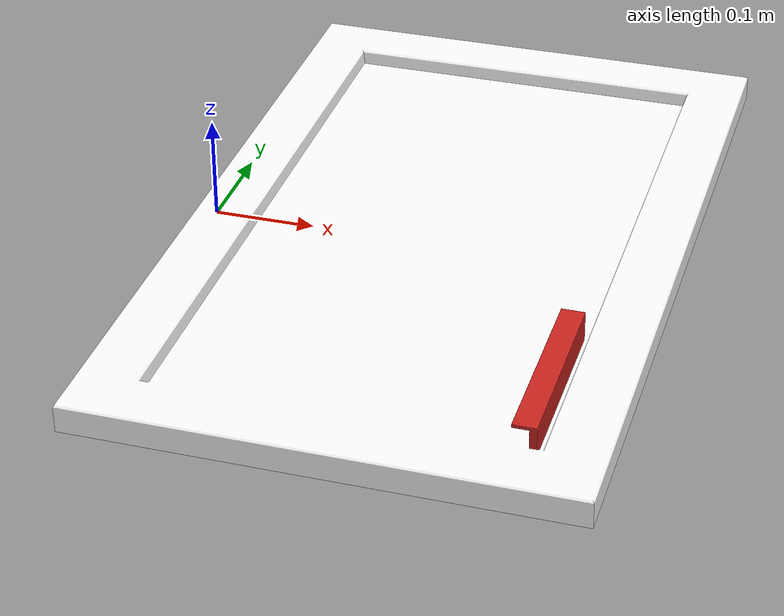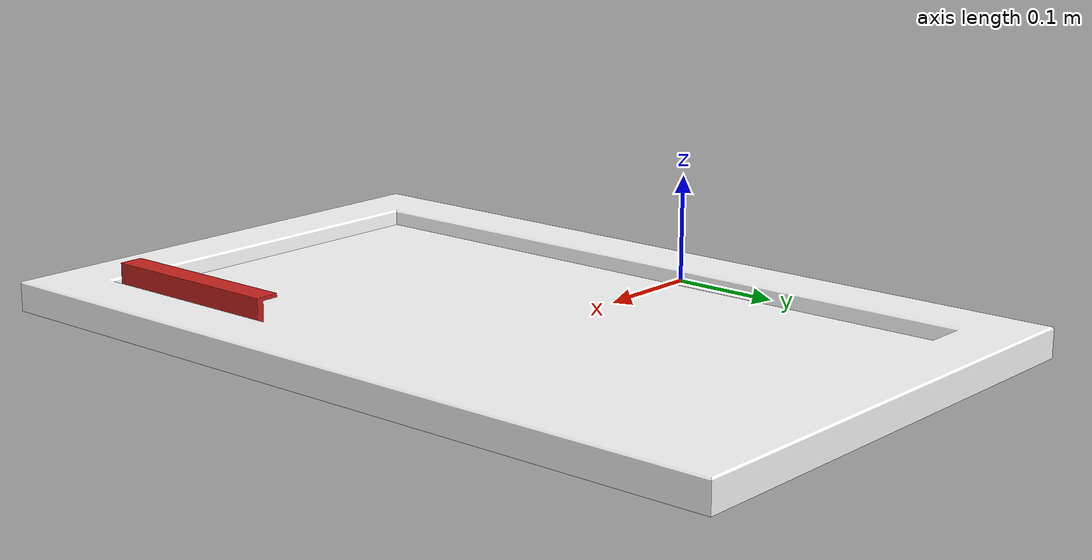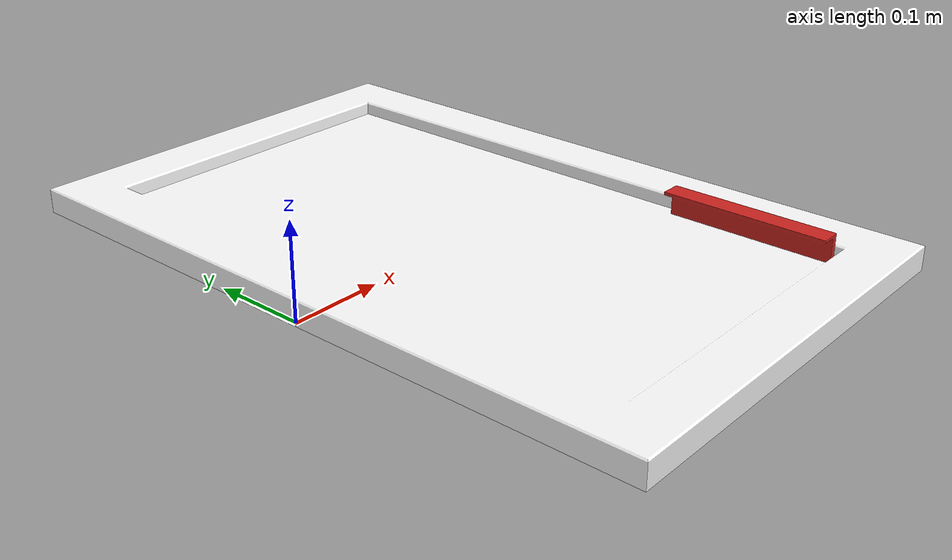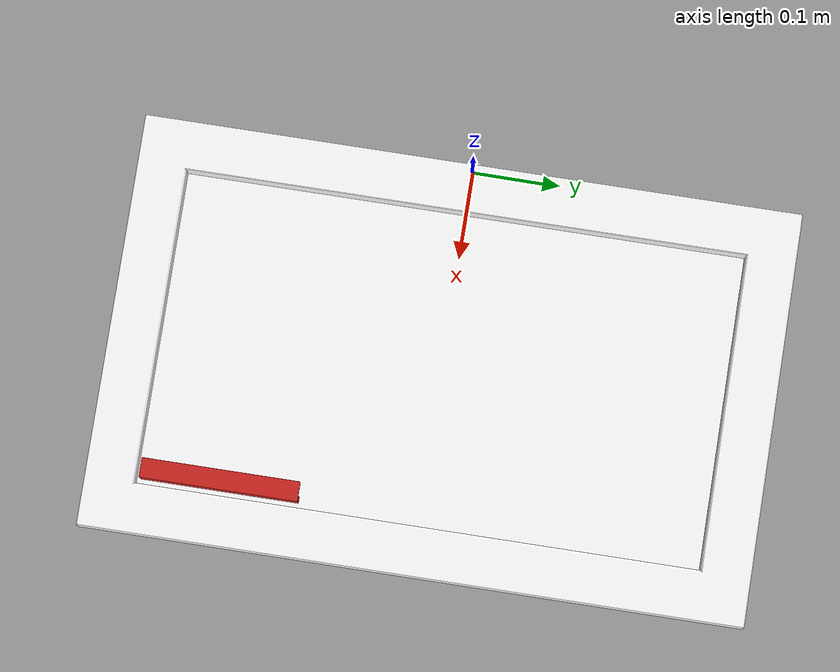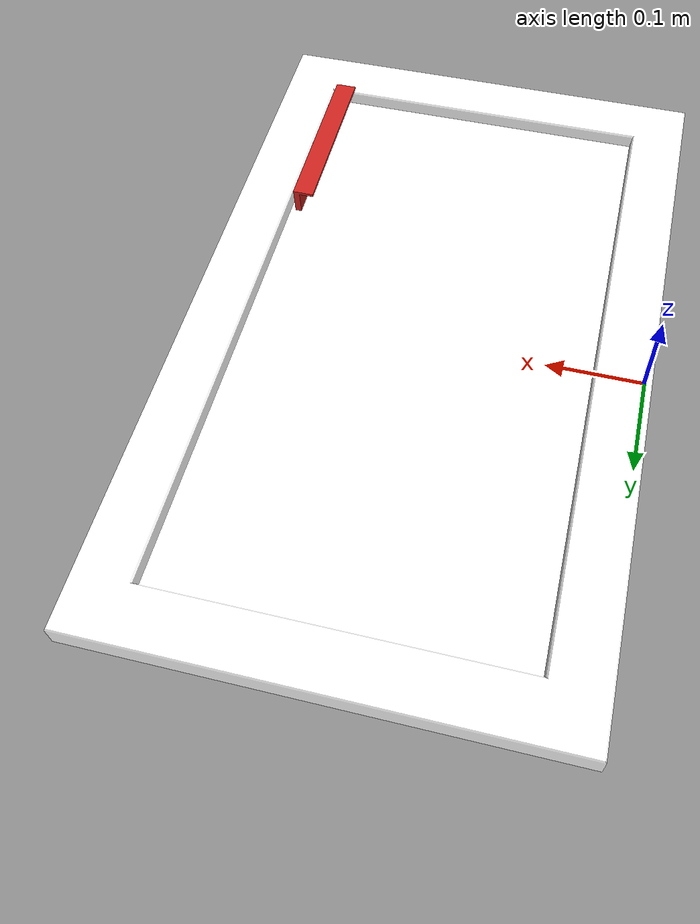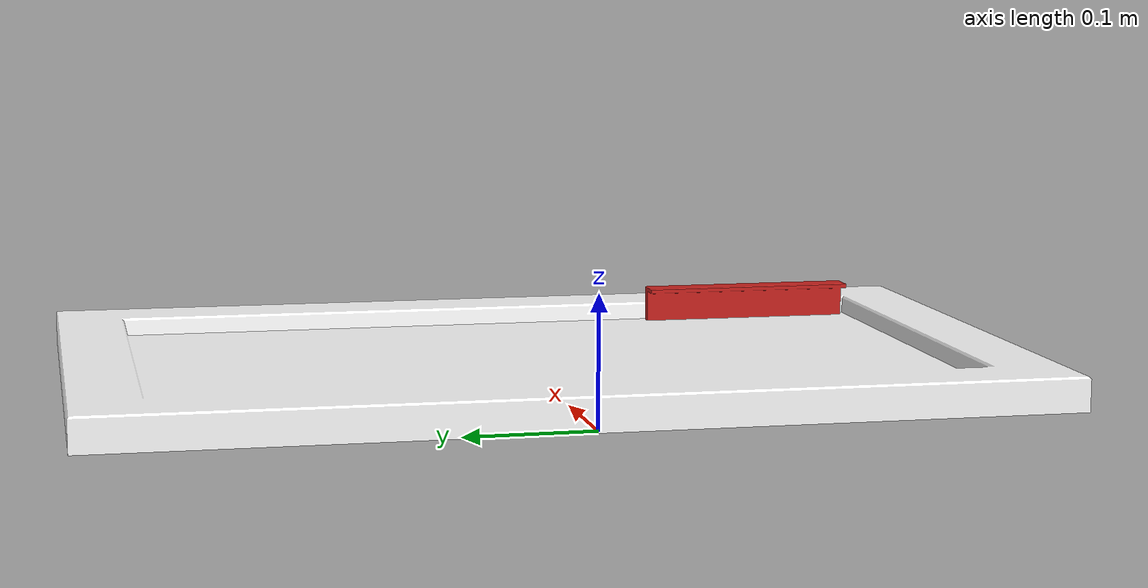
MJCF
<mujoco model="Cabinet_41c7fc3b">
  <compiler autolimits="true" boundmass="0.01" angle="radian"/>
  <default>
    <default class="/">
      <default class="__VISUAL_MJT__">
        <geom contype="0" conaffinity="0" group="0"/>
      </default>
      <default class="__STRUCTURAL_MJT__">
        <geom contype="8" conaffinity="15" group="4" friction="0.90000000000000002 0.90000000000000002 0.001" solref="0.025000000000000001 1" solimp="0.998 0.998 0.001"/>
      </default>
      <default class="__DYNAMIC_MJT__">
        <geom contype="1" conaffinity="15" group="4" friction="0.90000000000000002 0.90000000000000002 0.001" solref="0.025000000000000001 1" solimp="0.998 0.998 0.001"/>
      </default>
    </default>
  </default>
  <asset>
    <material name="material_WhiteWoodClean" class="/" specular="0.5" shininess="0.5" rgba="1 1 1 1"/>
    <mesh name="Cabinet_41c7fc3b_Mesh_01_2ad56f49" class="/" file="Cabinet_41c7fc3b_Mesh_01_2ad56f49/Cabinet_41c7fc3b_Mesh_01_2ad56f49.obj" scale="1 1 1" inertia="legacy"/>
    <texture name="HammeredMetal_AlbedoTransparency_2" type="2d" file="HammeredMetal_AlbedoTransparency.png"/>
    <material name="material_HammeredMetal_AlbedoTransparency_2" class="/" texture="HammeredMetal_AlbedoTransparency_2" specular="0.5" shininess="0.5" rgba="1 0.93407709999999999 0.81617649999999997 1"/>
    <mesh name="Cabinet_41c7fc3b_handle_3_178mm_01_037ed12e" class="/" file="Cabinet_41c7fc3b_handle_3_178mm_01_037ed12e/Cabinet_41c7fc3b_handle_3_178mm_01_037ed12e.obj" scale="1 1 1" inertia="legacy"/>
  </asset>
  <worldbody>
    <body name="Cabinet_41c7fc3b">
      <body name="Cabinet_41c7fc3b_Mesh_01_2ad56f49" pos="-0 0 0" quat="1 0 0 0">
        <geom name="Cabinet_41c7fc3b_Mesh_01_2ad56f49" class="__VISUAL_MJT__" type="mesh" material="material_WhiteWoodClean" mesh="Cabinet_41c7fc3b_Mesh_01_2ad56f49"/>
        <joint name="Cabinet_41c7fc3b_joint" class="/" type="hinge" pos="-0 0 0" axis="0 -1 0" stiffness="0" range="0 1.3962634015954636" damping="0.10000000000000001" frictionloss="0"/>
        <geom name="Cabinet_41c7fc3b_Mesh_01_2ad56f49_PrimitiveCollider_0" class="__DYNAMIC_MJT__" type="box" size="0.23500038683414459 0.37500020861625671 0.013550043106079102" rgba="0 1 0 1" pos="0.22999995946884155 0 0.013550043106079102" quat="0 1 0 0"/>
        <body name="Cabinet_41c7fc3b_handle_3_178mm_01_037ed12e" pos="0.39919999241828918 -0.22399997711181641 0.0099999904632568359" quat="0.70710678118654757 0 0 0.70710678118654746">
          <geom name="Cabinet_41c7fc3b_handle_3_178mm_01_037ed12e" class="__VISUAL_MJT__" type="mesh" material="material_HammeredMetal_AlbedoTransparency_2" mesh="Cabinet_41c7fc3b_handle_3_178mm_01_037ed12e"/>
          <geom name="Cabinet_41c7fc3b_handle_3_178mm_01_037ed12e_PrimitiveCollider_0" class="__DYNAMIC_MJT__" type="box" size="0.088752083480358124 0.0035549115855246782 0.016431529074907303" rgba="0 1 0 1" pos="1.373135938287362e-09 -8.2388424971213681e-09 0.016289949417114258" quat="0 1 0 0"/>
          <geom name="Cabinet_41c7fc3b_handle_3_178mm_01_037ed12e_PrimitiveCollider_1" class="__DYNAMIC_MJT__" type="box" size="0.088752083480358124 0.0077598136849701405 0.0019227256998419762" rgba="0 1 0 1" pos="1.9235140147344509e-09 0.011284901760518551 0.030798917636275291" quat="0 1 0 0"/>
        </body>
      </body>
    </body>
  </worldbody>
  <contact>
    <exclude name="//unnamed_contact_0" body1="Cabinet_41c7fc3b_Mesh_01_2ad56f49" body2="Cabinet_41c7fc3b_handle_3_178mm_01_037ed12e"/>
  </contact>
</mujoco>
